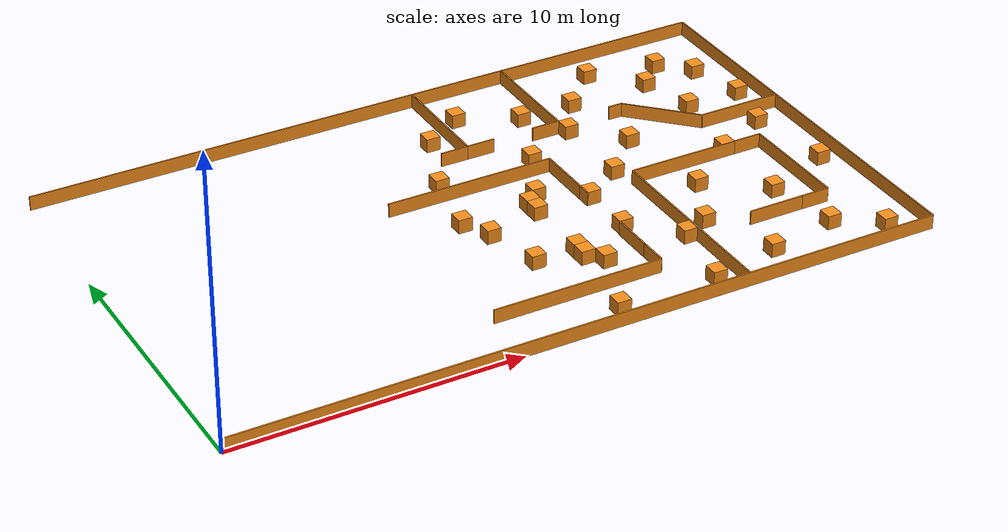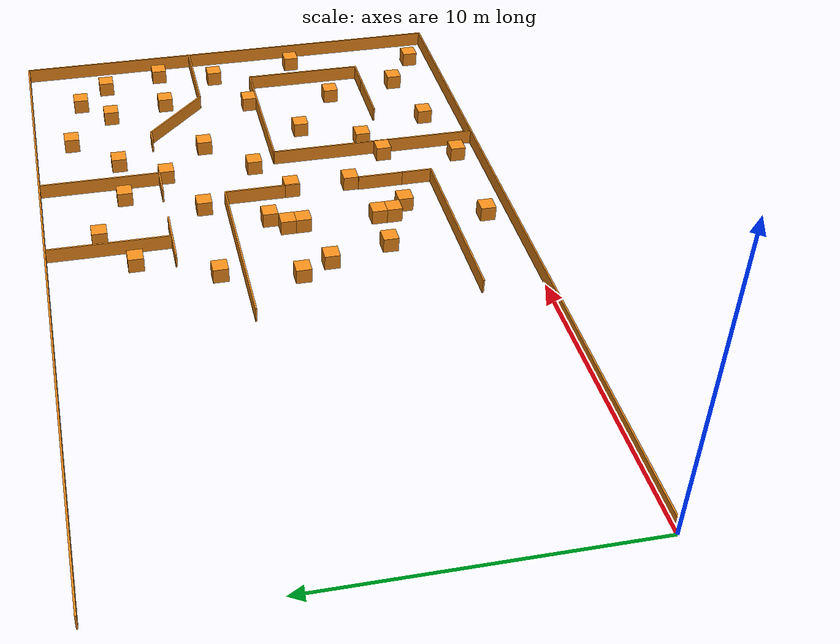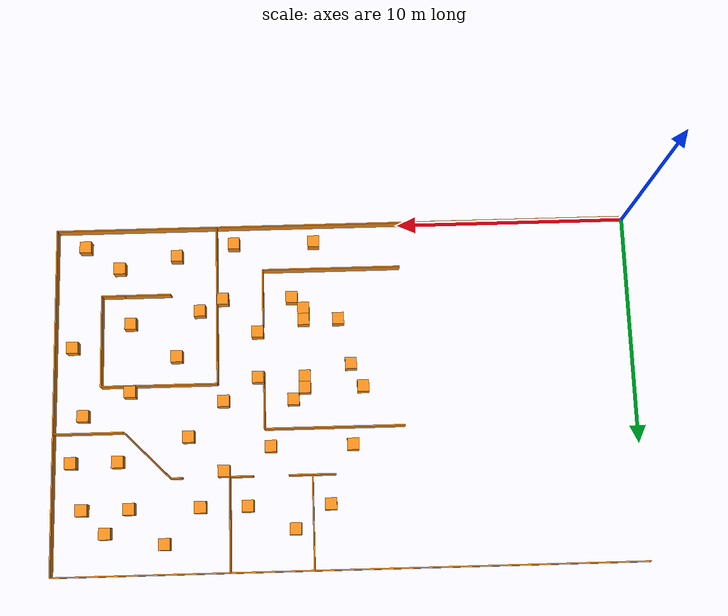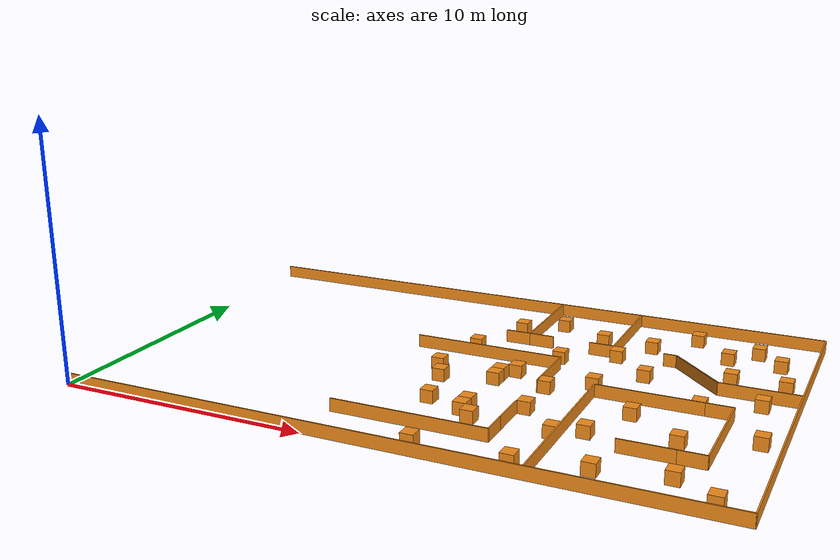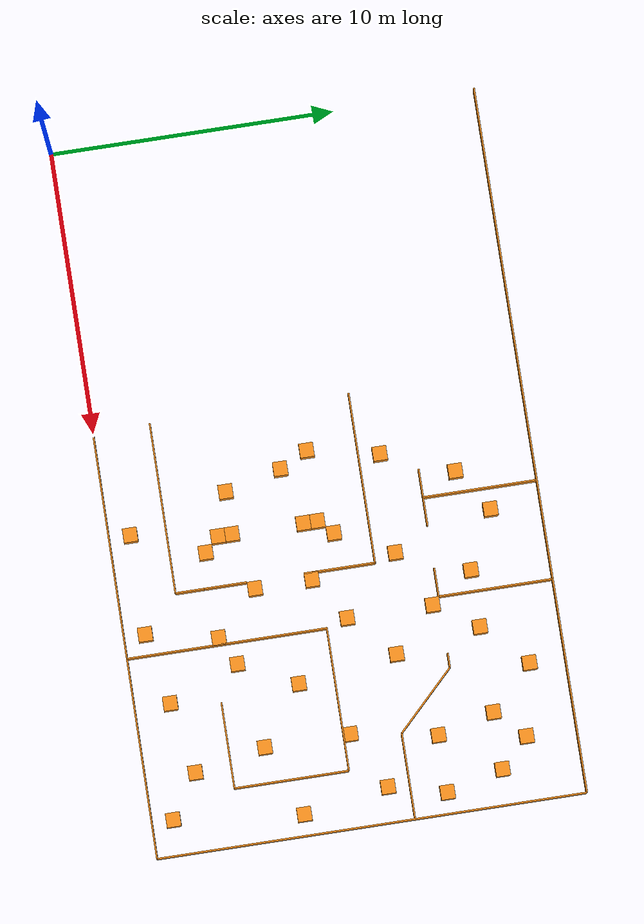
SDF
<sdf version="1.7">
 <world name="default">
  <model name="box_120">
   <pose>16.25 6.75 0.25 0 -0 0</pose>
   <link name="link">
    <inertial>
     <mass>1</mass>
     <inertia><ixx>0</ixx><ixy>0</ixy><ixz>0</ixz><iyy>0</iyy><iyz>0</iyz><izz>0</izz></inertia>
    </inertial>
    <collision name="collision"><geometry><box><size>0.5 0.5 0.5</size></box></geometry></collision>
    <visual name="visual">
     <geometry><box><size>0.5 0.5 0.5</size></box></geometry>
     <material>
      <script><name>Gazebo/Orange</name><uri>file://media/materials/scripts/gazebo.material</uri></script>
     </material>
    </visual>
   </link>
   <static>1</static>
  </model>
  <model name="box_119">
   <pose>17.75 3.25 0.25 0 -0 0</pose>
   <link name="link">
    <inertial>
     <mass>1</mass>
     <inertia><ixx>0</ixx><ixy>0</ixy><ixz>0</ixz><iyy>0</iyy><iyz>0</iyz><izz>0</izz></inertia>
    </inertial>
    <collision name="collision"><geometry><box><size>0.5 0.5 0.5</size></box></geometry></collision>
    <visual name="visual">
     <geometry><box><size>0.5 0.5 0.5</size></box></geometry>
     <material>
      <script><name>Gazebo/Orange</name><uri>file://media/materials/scripts/gazebo.material</uri></script>
     </material>
    </visual>
   </link>
   <static>1</static>
  </model>
  <model name="box_113">
   <pose>12.75 4.25 0.25 0 -0 0</pose>
   <link name="link">
    <inertial>
     <mass>1</mass>
     <inertia><ixx>0</ixx><ixy>0</ixy><ixz>0</ixz><iyy>0</iyy><iyz>0</iyz><izz>0</izz></inertia>
    </inertial>
    <collision name="collision"><geometry><box><size>0.5 0.5 0.5</size></box></geometry></collision>
    <visual name="visual">
     <geometry><box><size>0.5 0.5 0.5</size></box></geometry>
     <material>
      <script><name>Gazebo/Orange</name><uri>file://media/materials/scripts/gazebo.material</uri></script>
     </material>
    </visual>
   </link>
   <static>1</static>
  </model>
  <model name="box_112">
   <pose>14.75 3.25 0.25 0 -0 0</pose>
   <link name="link">
    <inertial>
     <mass>1</mass>
     <inertia><ixx>0</ixx><ixy>0</ixy><ixz>0</ixz><iyy>0</iyy><iyz>0</iyz><izz>0</izz></inertia>
    </inertial>
    <collision name="collision"><geometry><box><size>0.5 0.5 0.5</size></box></geometry></collision>
    <visual name="visual">
     <geometry><box><size>0.5 0.5 0.5</size></box></geometry>
     <material>
      <script><name>Gazebo/Orange</name><uri>file://media/materials/scripts/gazebo.material</uri></script>
     </material>
    </visual>
   </link>
   <static>1</static>
  </model>
  <model name="box_111">
   <pose>14.75 7.75 0.25 0 -0 0</pose>
   <link name="link">
    <inertial>
     <mass>1</mass>
     <inertia><ixx>0</ixx><ixy>0</ixy><ixz>0</ixz><iyy>0</iyy><iyz>0</iyz><izz>0</izz></inertia>
    </inertial>
    <collision name="collision"><geometry><box><size>0.5 0.5 0.5</size></box></geometry></collision>
    <visual name="visual">
     <geometry><box><size>0.5 0.5 0.5</size></box></geometry>
     <material>
      <script><name>Gazebo/Orange</name><uri>file://media/materials/scripts/gazebo.material</uri></script>
     </material>
    </visual>
   </link>
   <static>1</static>
  </model>
  <model name="box_109">
   <pose>12.25 6.25 0.25 0 -0 0</pose>
   <link name="link">
    <inertial>
     <mass>1</mass>
     <inertia><ixx>0</ixx><ixy>0</ixy><ixz>0</ixz><iyy>0</iyy><iyz>0</iyz><izz>0</izz></inertia>
    </inertial>
    <collision name="collision"><geometry><box><size>0.5 0.5 0.5</size></box></geometry></collision>
    <visual name="visual">
     <geometry><box><size>0.5 0.5 0.5</size></box></geometry>
     <material>
      <script><name>Gazebo/Orange</name><uri>file://media/materials/scripts/gazebo.material</uri></script>
     </material>
    </visual>
   </link>
   <static>1</static>
  </model>
  <model name="box_107">
   <pose>23.75 12.25 0.25 0 -0 0</pose>
   <link name="link">
    <inertial>
     <mass>1</mass>
     <inertia><ixx>0</ixx><ixy>0</ixy><ixz>0</ixz><iyy>0</iyy><iyz>0</iyz><izz>0</izz></inertia>
    </inertial>
    <collision name="collision"><geometry><box><size>0.5 0.5 0.5</size></box></geometry></collision>
    <visual name="visual">
     <geometry><box><size>0.5 0.5 0.5</size></box></geometry>
     <material>
      <script><name>Gazebo/Orange</name><uri>file://media/materials/scripts/gazebo.material</uri></script>
     </material>
    </visual>
   </link>
   <static>1</static>
  </model>
  <model name="box_106">
   <pose>23.75 8.25 0.25 0 -0 0</pose>
   <link name="link">
    <inertial>
     <mass>1</mass>
     <inertia><ixx>0</ixx><ixy>0</ixy><ixz>0</ixz><iyy>0</iyy><iyz>0</iyz><izz>0</izz></inertia>
    </inertial>
    <collision name="collision"><geometry><box><size>0.5 0.5 0.5</size></box></geometry></collision>
    <visual name="visual">
     <geometry><box><size>0.5 0.5 0.5</size></box></geometry>
     <material>
      <script><name>Gazebo/Orange</name><uri>file://media/materials/scripts/gazebo.material</uri></script>
     </material>
    </visual>
   </link>
   <static>1</static>
  </model>
  <model name="box_105">
   <pose>23.75 0.75 0.25 0 -0 0</pose>
   <link name="link">
    <inertial>
     <mass>1</mass>
     <inertia><ixx>0</ixx><ixy>0</ixy><ixz>0</ixz><iyy>0</iyy><iyz>0</iyz><izz>0</izz></inertia>
    </inertial>
    <collision name="collision"><geometry><box><size>0.5 0.5 0.5</size></box></geometry></collision>
    <visual name="visual">
     <geometry><box><size>0.5 0.5 0.5</size></box></geometry>
     <material>
      <script><name>Gazebo/Orange</name><uri>file://media/materials/scripts/gazebo.material</uri></script>
     </material>
    </visual>
   </link>
   <static>1</static>
  </model>
  <model name="box_104">
   <pose>24.25 5.25 0.25 0 -0 0</pose>
   <link name="link">
    <inertial>
     <mass>1</mass>
     <inertia><ixx>0</ixx><ixy>0</ixy><ixz>0</ixz><iyy>0</iyy><iyz>0</iyz><izz>0</izz></inertia>
    </inertial>
    <collision name="collision"><geometry><box><size>0.5 0.5 0.5</size></box></geometry></collision>
    <visual name="visual">
     <geometry><box><size>0.5 0.5 0.5</size></box></geometry>
     <material>
      <script><name>Gazebo/Orange</name><uri>file://media/materials/scripts/gazebo.material</uri></script>
     </material>
    </visual>
   </link>
   <static>1</static>
  </model>
  <model name="box_103">
   <pose>18.75 3.75 0.25 0 -0 0</pose>
   <link name="link">
    <inertial>
     <mass>1</mass>
     <inertia><ixx>0</ixx><ixy>0</ixy><ixz>0</ixz><iyy>0</iyy><iyz>0</iyz><izz>0</izz></inertia>
    </inertial>
    <collision name="collision"><geometry><box><size>0.5 0.5 0.5</size></box></geometry></collision>
    <visual name="visual">
     <geometry><box><size>0.5 0.5 0.5</size></box></geometry>
     <material>
      <script><name>Gazebo/Orange</name><uri>file://media/materials/scripts/gazebo.material</uri></script>
     </material>
    </visual>
   </link>
   <static>1</static>
  </model>
  <model name="box_93">
   <pose>13.75 0.75 0.25 0 -0 0</pose>
   <link name="link">
    <inertial>
     <mass>1</mass>
     <inertia><ixx>0</ixx><ixy>0</ixy><ixz>0</ixz><iyy>0</iyy><iyz>0</iyz><izz>0</izz></inertia>
    </inertial>
    <collision name="collision"><geometry><box><size>0.5 0.5 0.5</size></box></geometry></collision>
    <visual name="visual">
     <geometry><box><size>0.5 0.5 0.5</size></box></geometry>
     <material>
      <script><name>Gazebo/Orange</name><uri>file://media/materials/scripts/gazebo.material</uri></script>
     </material>
    </visual>
   </link>
   <static>1</static>
  </model>
  <model name="box_91">
   <pose>17.25 0.75 0.25 0 -0 0</pose>
   <link name="link">
    <inertial>
     <mass>1</mass>
     <inertia><ixx>0</ixx><ixy>0</ixy><ixz>0</ixz><iyy>0</iyy><iyz>0</iyz><izz>0</izz></inertia>
    </inertial>
    <collision name="collision"><geometry><box><size>0.5 0.5 0.5</size></box></geometry></collision>
    <visual name="visual">
     <geometry><box><size>0.5 0.5 0.5</size></box></geometry>
     <material>
      <script><name>Gazebo/Orange</name><uri>file://media/materials/scripts/gazebo.material</uri></script>
     </material>
    </visual>
   </link>
   <static>1</static>
  </model>
  <model name="box_90">
   <pose>16.25 4.75 0.25 0 -0 0</pose>
   <link name="link">
    <inertial>
     <mass>1</mass>
     <inertia><ixx>0</ixx><ixy>0</ixy><ixz>0</ixz><iyy>0</iyy><iyz>0</iyz><izz>0</izz></inertia>
    </inertial>
    <collision name="collision"><geometry><box><size>0.5 0.5 0.5</size></box></geometry></collision>
    <visual name="visual">
     <geometry><box><size>0.5 0.5 0.5</size></box></geometry>
     <material>
      <script><name>Gazebo/Orange</name><uri>file://media/materials/scripts/gazebo.material</uri></script>
     </material>
    </visual>
   </link>
   <static>1</static>
  </model>
  <model name="box_89">
   <pose>21.75 7.25 0.25 0 -0 0</pose>
   <link name="link">
    <inertial>
     <mass>1</mass>
     <inertia><ixx>0</ixx><ixy>0</ixy><ixz>0</ixz><iyy>0</iyy><iyz>0</iyz><izz>0</izz></inertia>
    </inertial>
    <collision name="collision"><geometry><box><size>0.5 0.5 0.5</size></box></geometry></collision>
    <visual name="visual">
     <geometry><box><size>0.5 0.5 0.5</size></box></geometry>
     <material>
      <script><name>Gazebo/Orange</name><uri>file://media/materials/scripts/gazebo.material</uri></script>
     </material>
    </visual>
   </link>
   <static>1</static>
  </model>
  <model name="box_88">
   <pose>17.75 10.75 0.25 0 -0 0</pose>
   <link name="link">
    <inertial>
     <mass>1</mass>
     <inertia><ixx>0</ixx><ixy>0</ixy><ixz>0</ixz><iyy>0</iyy><iyz>0</iyz><izz>0</izz></inertia>
    </inertial>
    <collision name="collision"><geometry><box><size>0.5 0.5 0.5</size></box></geometry></collision>
    <visual name="visual">
     <geometry><box><size>0.5 0.5 0.5</size></box></geometry>
     <material>
      <script><name>Gazebo/Orange</name><uri>file://media/materials/scripts/gazebo.material</uri></script>
     </material>
    </visual>
   </link>
   <static>1</static>
  </model>
  <model name="box_87">
   <pose>15.75 9.75 0.25 0 -0 0</pose>
   <link name="link">
    <inertial>
     <mass>1</mass>
     <inertia><ixx>0</ixx><ixy>0</ixy><ixz>0</ixz><iyy>0</iyy><iyz>0</iyz><izz>0</izz></inertia>
    </inertial>
    <collision name="collision"><geometry><box><size>0.5 0.5 0.5</size></box></geometry></collision>
    <visual name="visual">
     <geometry><box><size>0.5 0.5 0.5</size></box></geometry>
     <material>
      <script><name>Gazebo/Orange</name><uri>file://media/materials/scripts/gazebo.material</uri></script>
     </material>
    </visual>
   </link>
   <static>1</static>
  </model>
  <model name="box_86">
   <pose>12.25 9.75 0.25 0 -0 0</pose>
   <link name="link">
    <inertial>
     <mass>1</mass>
     <inertia><ixx>0</ixx><ixy>0</ixy><ixz>0</ixz><iyy>0</iyy><iyz>0</iyz><izz>0</izz></inertia>
    </inertial>
    <collision name="collision"><geometry><box><size>0.5 0.5 0.5</size></box></geometry></collision>
    <visual name="visual">
     <geometry><box><size>0.5 0.5 0.5</size></box></geometry>
     <material>
      <script><name>Gazebo/Orange</name><uri>file://media/materials/scripts/gazebo.material</uri></script>
     </material>
    </visual>
   </link>
   <static>1</static>
  </model>
  <model name="box_82">
   <pose>22.25 1.75 0.25 0 -0 0</pose>
   <link name="link">
    <inertial>
     <mass>1</mass>
     <inertia><ixx>0</ixx><ixy>0</ixy><ixz>0</ixz><iyy>0</iyy><iyz>0</iyz><izz>0</izz></inertia>
    </inertial>
    <collision name="collision"><geometry><box><size>0.5 0.5 0.5</size></box></geometry></collision>
    <visual name="visual">
     <geometry><box><size>0.5 0.5 0.5</size></box></geometry>
     <material>
      <script><name>Gazebo/Orange</name><uri>file://media/materials/scripts/gazebo.material</uri></script>
     </material>
    </visual>
   </link>
   <static>1</static>
  </model>
  <model name="box_81">
   <pose>19.75 1.25 0.25 0 -0 0</pose>
   <link name="link">
    <inertial>
     <mass>1</mass>
     <inertia><ixx>0</ixx><ixy>0</ixy><ixz>0</ixz><iyy>0</iyy><iyz>0</iyz><izz>0</izz></inertia>
    </inertial>
    <collision name="collision"><geometry><box><size>0.5 0.5 0.5</size></box></geometry></collision>
    <visual name="visual">
     <geometry><box><size>0.5 0.5 0.5</size></box></geometry>
     <material>
      <script><name>Gazebo/Orange</name><uri>file://media/materials/scripts/gazebo.material</uri></script>
     </material>
    </visual>
   </link>
   <static>1</static>
  </model>
  <model name="box_80">
   <pose>21.75 4.25 0.25 0 -0 0</pose>
   <link name="link">
    <inertial>
     <mass>1</mass>
     <inertia><ixx>0</ixx><ixy>0</ixy><ixz>0</ixz><iyy>0</iyy><iyz>0</iyz><izz>0</izz></inertia>
    </inertial>
    <collision name="collision"><geometry><box><size>0.5 0.5 0.5</size></box></geometry></collision>
    <visual name="visual">
     <geometry><box><size>0.5 0.5 0.5</size></box></geometry>
     <material>
      <script><name>Gazebo/Orange</name><uri>file://media/materials/scripts/gazebo.material</uri></script>
     </material>
    </visual>
   </link>
   <static>1</static>
  </model>
  <model name="box_79">
   <pose>19.75 5.75 0.25 0 -0 0</pose>
   <link name="link">
    <inertial>
     <mass>1</mass>
     <inertia><ixx>0</ixx><ixy>0</ixy><ixz>0</ixz><iyy>0</iyy><iyz>0</iyz><izz>0</izz></inertia>
    </inertial>
    <collision name="collision"><geometry><box><size>0.5 0.5 0.5</size></box></geometry></collision>
    <visual name="visual">
     <geometry><box><size>0.5 0.5 0.5</size></box></geometry>
     <material>
      <script><name>Gazebo/Orange</name><uri>file://media/materials/scripts/gazebo.material</uri></script>
     </material>
    </visual>
   </link>
   <static>1</static>
  </model>
  <model name="box_78">
   <pose>17.75 7.75 0.25 0 -0 0</pose>
   <link name="link">
    <inertial>
     <mass>1</mass>
     <inertia><ixx>0</ixx><ixy>0</ixy><ixz>0</ixz><iyy>0</iyy><iyz>0</iyz><izz>0</izz></inertia>
    </inertial>
    <collision name="collision"><geometry><box><size>0.5 0.5 0.5</size></box></geometry></collision>
    <visual name="visual">
     <geometry><box><size>0.5 0.5 0.5</size></box></geometry>
     <material>
      <script><name>Gazebo/Orange</name><uri>file://media/materials/scripts/gazebo.material</uri></script>
     </material>
    </visual>
   </link>
   <static>1</static>
  </model>
  <model name="box_77">
   <pose>19.25 9.25 0.25 0 -0 0</pose>
   <link name="link">
    <inertial>
     <mass>1</mass>
     <inertia><ixx>0</ixx><ixy>0</ixy><ixz>0</ixz><iyy>0</iyy><iyz>0</iyz><izz>0</izz></inertia>
    </inertial>
    <collision name="collision"><geometry><box><size>0.5 0.5 0.5</size></box></geometry></collision>
    <visual name="visual">
     <geometry><box><size>0.5 0.5 0.5</size></box></geometry>
     <material>
      <script><name>Gazebo/Orange</name><uri>file://media/materials/scripts/gazebo.material</uri></script>
     </material>
    </visual>
   </link>
   <static>1</static>
  </model>
  <model name="box_76">
   <pose>21.75 12.25 0.25 0 -0 0</pose>
   <link name="link">
    <inertial>
     <mass>1</mass>
     <inertia><ixx>0</ixx><ixy>0</ixy><ixz>0</ixz><iyy>0</iyy><iyz>0</iyz><izz>0</izz></inertia>
    </inertial>
    <collision name="collision"><geometry><box><size>0.5 0.5 0.5</size></box></geometry></collision>
    <visual name="visual">
     <geometry><box><size>0.5 0.5 0.5</size></box></geometry>
     <material>
      <script><name>Gazebo/Orange</name><uri>file://media/materials/scripts/gazebo.material</uri></script>
     </material>
    </visual>
   </link>
   <static>1</static>
  </model>
  <model name="box_75">
   <pose>22.25 10.25 0.25 0 -0 0</pose>
   <link name="link">
    <inertial>
     <mass>1</mass>
     <inertia><ixx>0</ixx><ixy>0</ixy><ixz>0</ixz><iyy>0</iyy><iyz>0</iyz><izz>0</izz></inertia>
    </inertial>
    <collision name="collision"><geometry><box><size>0.5 0.5 0.5</size></box></geometry></collision>
    <visual name="visual">
     <geometry><box><size>0.5 0.5 0.5</size></box></geometry>
     <material>
      <script><name>Gazebo/Orange</name><uri>file://media/materials/scripts/gazebo.material</uri></script>
     </material>
    </visual>
   </link>
   <static>1</static>
  </model>
  <model name="box_74">
   <pose>24.25 10.25 0.25 0 -0 0</pose>
   <link name="link">
    <inertial>
     <mass>1</mass>
     <inertia><ixx>0</ixx><ixy>0</ixy><ixz>0</ixz><iyy>0</iyy><iyz>0</iyz><izz>0</izz></inertia>
    </inertial>
    <collision name="collision"><geometry><box><size>0.5 0.5 0.5</size></box></geometry></collision>
    <visual name="visual">
     <geometry><box><size>0.5 0.5 0.5</size></box></geometry>
     <material>
      <script><name>Gazebo/Orange</name><uri>file://media/materials/scripts/gazebo.material</uri></script>
     </material>
    </visual>
   </link>
   <static>1</static>
  </model>
  <model name="box_73">
   <pose>18.75 12.25 0.25 0 -0 0</pose>
   <link name="link">
    <inertial>
     <mass>1</mass>
     <inertia><ixx>0</ixx><ixy>0</ixy><ixz>0</ixz><iyy>0</iyy><iyz>0</iyz><izz>0</izz></inertia>
    </inertial>
    <collision name="collision"><geometry><box><size>0.5 0.5 0.5</size></box></geometry></collision>
    <visual name="visual">
     <geometry><box><size>0.5 0.5 0.5</size></box></geometry>
     <material>
      <script><name>Gazebo/Orange</name><uri>file://media/materials/scripts/gazebo.material</uri></script>
     </material>
    </visual>
   </link>
   <static>1</static>
  </model>
  <model name="box_72">
   <pose>20.25 13.75 0.25 0 -0 0</pose>
   <link name="link">
    <inertial>
     <mass>1</mass>
     <inertia><ixx>0</ixx><ixy>0</ixy><ixz>0</ixz><iyy>0</iyy><iyz>0</iyz><izz>0</izz></inertia>
    </inertial>
    <collision name="collision"><geometry><box><size>0.5 0.5 0.5</size></box></geometry></collision>
    <visual name="visual">
     <geometry><box><size>0.5 0.5 0.5</size></box></geometry>
     <material>
      <script><name>Gazebo/Orange</name><uri>file://media/materials/scripts/gazebo.material</uri></script>
     </material>
    </visual>
   </link>
   <static>1</static>
  </model>
  <model name="box_71">
   <pose>22.75 13.25 0.25 0 -0 0</pose>
   <link name="link">
    <inertial>
     <mass>1</mass>
     <inertia><ixx>0</ixx><ixy>0</ixy><ixz>0</ixz><iyy>0</iyy><iyz>0</iyz><izz>0</izz></inertia>
    </inertial>
    <collision name="collision"><geometry><box><size>0.5 0.5 0.5</size></box></geometry></collision>
    <visual name="visual">
     <geometry><box><size>0.5 0.5 0.5</size></box></geometry>
     <material>
      <script><name>Gazebo/Orange</name><uri>file://media/materials/scripts/gazebo.material</uri></script>
     </material>
    </visual>
   </link>
   <static>1</static>
  </model>
  <model name="box_70">
   <pose>16.75 12.25 0.25 0 -0 0</pose>
   <link name="link">
    <inertial>
     <mass>1</mass>
     <inertia><ixx>0</ixx><ixy>0</ixy><ixz>0</ixz><iyy>0</iyy><iyz>0</iyz><izz>0</izz></inertia>
    </inertial>
    <collision name="collision"><geometry><box><size>0.5 0.5 0.5</size></box></geometry></collision>
    <visual name="visual">
     <geometry><box><size>0.5 0.5 0.5</size></box></geometry>
     <material>
      <script><name>Gazebo/Orange</name><uri>file://media/materials/scripts/gazebo.material</uri></script>
     </material>
    </visual>
   </link>
   <static>1</static>
  </model>
  <model name="box_69">
   <pose>14.75 13.25 0.25 0 -0 0</pose>
   <link name="link">
    <inertial>
     <mass>1</mass>
     <inertia><ixx>0</ixx><ixy>0</ixy><ixz>0</ixz><iyy>0</iyy><iyz>0</iyz><izz>0</izz></inertia>
    </inertial>
    <collision name="collision"><geometry><box><size>0.5 0.5 0.5</size></box></geometry></collision>
    <visual name="visual">
     <geometry><box><size>0.5 0.5 0.5</size></box></geometry>
     <material>
      <script><name>Gazebo/Orange</name><uri>file://media/materials/scripts/gazebo.material</uri></script>
     </material>
    </visual>
   </link>
   <static>1</static>
  </model>
  <model name="box_67">
   <pose>13.25 12.25 0.25 0 -0 0</pose>
   <link name="link">
    <inertial>
     <mass>1</mass>
     <inertia><ixx>0</ixx><ixy>0</ixy><ixz>0</ixz><iyy>0</iyy><iyz>0</iyz><izz>0</izz></inertia>
    </inertial>
    <collision name="collision"><geometry><box><size>0.5 0.5 0.5</size></box></geometry></collision>
    <visual name="visual">
     <geometry><box><size>0.5 0.5 0.5</size></box></geometry>
     <material>
      <script><name>Gazebo/Orange</name><uri>file://media/materials/scripts/gazebo.material</uri></script>
     </material>
    </visual>
   </link>
   <static>1</static>
  </model>
  <model name="box_52">
   <pose>14.25 4.25 0.25 0 -0 0</pose>
   <link name="link">
    <inertial>
     <mass>1</mass>
     <inertia><ixx>0</ixx><ixy>0</ixy><ixz>0</ixz><iyy>0</iyy><iyz>0</iyz><izz>0</izz></inertia>
    </inertial>
    <collision name="collision"><geometry><box><size>0.5 0.5 0.5</size></box></geometry></collision>
    <visual name="visual">
     <geometry><box><size>0.5 0.5 0.5</size></box></geometry>
     <material>
      <script><name>Gazebo/Orange</name><uri>file://media/materials/scripts/gazebo.material</uri></script>
     </material>
    </visual>
   </link>
   <static>1</static>
  </model>
  <model name="box_51">
   <pose>14.25 6.75 0.25 0 -0 0</pose>
   <link name="link">
    <inertial>
     <mass>1</mass>
     <inertia><ixx>0</ixx><ixy>0</ixy><ixz>0</ixz><iyy>0</iyy><iyz>0</iyz><izz>0</izz></inertia>
    </inertial>
    <collision name="collision"><geometry><box><size>0.5 0.5 0.5</size></box></geometry></collision>
    <visual name="visual">
     <geometry><box><size>0.5 0.5 0.5</size></box></geometry>
     <material>
      <script><name>Gazebo/Orange</name><uri>file://media/materials/scripts/gazebo.material</uri></script>
     </material>
    </visual>
   </link>
   <static>1</static>
  </model>
  <model name="box_48">
   <pose>14.25 3.75 0.25 0 -0 0</pose>
   <link name="link">
    <inertial>
     <mass>1</mass>
     <inertia><ixx>0</ixx><ixy>0</ixy><ixz>0</ixz><iyy>0</iyy><iyz>0</iyz><izz>0</izz></inertia>
    </inertial>
    <collision name="collision"><geometry><box><size>0.5 0.5 0.5</size></box></geometry></collision>
    <visual name="visual">
     <geometry><box><size>0.5 0.5 0.5</size></box></geometry>
     <material>
      <script><name>Gazebo/Orange</name><uri>file://media/materials/scripts/gazebo.material</uri></script>
     </material>
    </visual>
   </link>
   <static>1</static>
  </model>
  <model name="box_46">
   <pose>14.25 7.25 0.25 0 -0 0</pose>
   <link name="link">
    <inertial>
     <mass>1</mass>
     <inertia><ixx>0</ixx><ixy>0</ixy><ixz>0</ixz><iyy>0</iyy><iyz>0</iyz><izz>0</izz></inertia>
    </inertial>
    <collision name="collision"><geometry><box><size>0.5 0.5 0.5</size></box></geometry></collision>
    <visual name="visual">
     <geometry><box><size>0.5 0.5 0.5</size></box></geometry>
     <material>
      <script><name>Gazebo/Orange</name><uri>file://media/materials/scripts/gazebo.material</uri></script>
     </material>
    </visual>
   </link>
   <static>1</static>
  </model>
  <model name="box_45">
   <pose>11.75 7.25 0.25 0 -0 0</pose>
   <link name="link">
    <inertial>
     <mass>1</mass>
     <inertia><ixx>0</ixx><ixy>0</ixy><ixz>0</ixz><iyy>0</iyy><iyz>0</iyz><izz>0</izz></inertia>
    </inertial>
    <collision name="collision"><geometry><box><size>0.5 0.5 0.5</size></box></geometry></collision>
    <visual name="visual">
     <geometry><box><size>0.5 0.5 0.5</size></box></geometry>
     <material>
      <script><name>Gazebo/Orange</name><uri>file://media/materials/scripts/gazebo.material</uri></script>
     </material>
    </visual>
   </link>
   <static>1</static>
  </model>
  <model name="box_44">
   <pose>16 3.75 0.25 0 -0 1.5708</pose>
   <link name="link">
    <inertial>
     <mass>1</mass>
     <inertia><ixx>0</ixx><ixy>0</ixy><ixz>0</ixz><iyy>0</iyy><iyz>0</iyz><izz>0</izz></inertia>
    </inertial>
    <collision name="collision"><geometry><box><size>1.5 0.05 0.5</size></box></geometry></collision>
    <visual name="visual">
     <geometry><box><size>1.5 0.05 0.5</size></box></geometry>
     <material>
      <script><name>Gazebo/Orange</name><uri>file://media/materials/scripts/gazebo.material</uri></script>
     </material>
    </visual>
   </link>
   <static>1</static>
  </model>
  <model name="box_43">
   <pose>16 6.75 0.25 0 0 -1.5708</pose>
   <link name="link">
    <inertial>
     <mass>1</mass>
     <inertia><ixx>0</ixx><ixy>0</ixy><ixz>0</ixz><iyy>0</iyy><iyz>0</iyz><izz>0</izz></inertia>
    </inertial>
    <collision name="collision"><geometry><box><size>0.5 0.05 0.5</size></box></geometry></collision>
    <visual name="visual">
     <geometry><box><size>0.5 0.05 0.5</size></box></geometry>
     <material>
      <script><name>Gazebo/Orange</name><uri>file://media/materials/scripts/gazebo.material</uri></script>
     </material>
    </visual>
   </link>
   <static>1</static>
  </model>
  <model name="box_40">
   <pose>22.5 3 0.25 0 -0 0</pose>
   <link name="link">
    <inertial>
     <mass>1</mass>
     <inertia><ixx>0</ixx><ixy>0</ixy><ixz>0</ixz><iyy>0</iyy><iyz>0</iyz><izz>0</izz></inertia>
    </inertial>
    <collision name="collision"><geometry><box><size>1 0.05 0.5</size></box></geometry></collision>
    <visual name="visual">
     <geometry><box><size>1 0.05 0.5</size></box></geometry>
     <material>
      <script><name>Gazebo/Orange</name><uri>file://media/materials/scripts/gazebo.material</uri></script>
     </material>
    </visual>
   </link>
   <static>1</static>
  </model>
  <model name="box_39">
   <pose>23 5 0.25 0 -0 1.5708</pose>
   <link name="link">
    <inertial>
     <mass>1</mass>
     <inertia><ixx>0</ixx><ixy>0</ixy><ixz>0</ixz><iyy>0</iyy><iyz>0</iyz><izz>0</izz></inertia>
    </inertial>
    <collision name="collision"><geometry><box><size>4 0.05 0.5</size></box></geometry></collision>
    <visual name="visual">
     <geometry><box><size>4 0.05 0.5</size></box></geometry>
     <material>
      <script><name>Gazebo/Orange</name><uri>file://media/materials/scripts/gazebo.material</uri></script>
     </material>
    </visual>
   </link>
   <static>1</static>
  </model>
  <model name="box_38">
   <pose>22.5 7 0.25 0 0 -3.14159</pose>
   <link name="link">
    <inertial>
     <mass>1</mass>
     <inertia><ixx>0</ixx><ixy>0</ixy><ixz>0</ixz><iyy>0</iyy><iyz>0</iyz><izz>0</izz></inertia>
    </inertial>
    <collision name="collision"><geometry><box><size>1 0.05 0.5</size></box></geometry></collision>
    <visual name="visual">
     <geometry><box><size>1 0.05 0.5</size></box></geometry>
     <material>
      <script><name>Gazebo/Orange</name><uri>file://media/materials/scripts/gazebo.material</uri></script>
     </material>
    </visual>
   </link>
   <static>1</static>
  </model>
  <model name="box_36">
   <pose>13 2 0.25 0 -0 0</pose>
   <link name="link">
    <inertial>
     <mass>1</mass>
     <inertia><ixx>0</ixx><ixy>0</ixy><ixz>0</ixz><iyy>0</iyy><iyz>0</iyz><izz>0</izz></inertia>
    </inertial>
    <collision name="collision"><geometry><box><size>6 0.05 0.5</size></box></geometry></collision>
    <visual name="visual">
     <geometry><box><size>6 0.05 0.5</size></box></geometry>
     <material>
      <script><name>Gazebo/Orange</name><uri>file://media/materials/scripts/gazebo.material</uri></script>
     </material>
    </visual>
   </link>
   <static>1</static>
  </model>
  <model name="box_35">
   <pose>16 2.5 0.25 0 -0 1.5708</pose>
   <link name="link">
    <inertial>
     <mass>1</mass>
     <inertia><ixx>0</ixx><ixy>0</ixy><ixz>0</ixz><iyy>0</iyy><iyz>0</iyz><izz>0</izz></inertia>
    </inertial>
    <collision name="collision"><geometry><box><size>1 0.05 0.5</size></box></geometry></collision>
    <visual name="visual">
     <geometry><box><size>1 0.05 0.5</size></box></geometry>
     <material>
      <script><name>Gazebo/Orange</name><uri>file://media/materials/scripts/gazebo.material</uri></script>
     </material>
    </visual>
   </link>
   <static>1</static>
  </model>
  <model name="box_31">
   <pose>19.75 11 0.25 0 -0 0</pose>
   <link name="link">
    <inertial>
     <mass>1</mass>
     <inertia><ixx>0</ixx><ixy>0</ixy><ixz>0</ixz><iyy>0</iyy><iyz>0</iyz><izz>0</izz></inertia>
    </inertial>
    <collision name="collision"><geometry><box><size>0.5 0.05 0.5</size></box></geometry></collision>
    <visual name="visual">
     <geometry><box><size>0.5 0.05 0.5</size></box></geometry>
     <material>
      <script><name>Gazebo/Orange</name><uri>file://media/materials/scripts/gazebo.material</uri></script>
     </material>
    </visual>
   </link>
   <static>1</static>
  </model>
  <model name="box_30">
   <pose>23.5 9 0.25 0 0 -3.14159</pose>
   <link name="link">
    <inertial>
     <mass>1</mass>
     <inertia><ixx>0</ixx><ixy>0</ixy><ixz>0</ixz><iyy>0</iyy><iyz>0</iyz><izz>0</izz></inertia>
    </inertial>
    <collision name="collision"><geometry><box><size>3 0.05 0.5</size></box></geometry></collision>
    <visual name="visual">
     <geometry><box><size>3 0.05 0.5</size></box></geometry>
     <material>
      <script><name>Gazebo/Orange</name><uri>file://media/materials/scripts/gazebo.material</uri></script>
     </material>
    </visual>
   </link>
   <static>1</static>
  </model>
  <model name="box_29">
   <pose>21 10 0.25 0 -0 2.35619</pose>
   <link name="link">
    <inertial>
     <mass>1</mass>
     <inertia><ixx>0</ixx><ixy>0</ixy><ixz>0</ixz><iyy>0</iyy><iyz>0</iyz><izz>0</izz></inertia>
    </inertial>
    <collision name="collision"><geometry><box><size>2.82843 0.05 0.5</size></box></geometry></collision>
    <visual name="visual">
     <geometry><box><size>2.82843 0.05 0.5</size></box></geometry>
     <material>
      <script><name>Gazebo/Orange</name><uri>file://media/materials/scripts/gazebo.material</uri></script>
     </material>
    </visual>
   </link>
   <static>1</static>
  </model>
  <model name="box_28">
   <pose>21 3 0.25 0 -0 0</pose>
   <link name="link">
    <inertial>
     <mass>1</mass>
     <inertia><ixx>0</ixx><ixy>0</ixy><ixz>0</ixz><iyy>0</iyy><iyz>0</iyz><izz>0</izz></inertia>
    </inertial>
    <collision name="collision"><geometry><box><size>2 0.05 0.5</size></box></geometry></collision>
    <visual name="visual">
     <geometry><box><size>2 0.05 0.5</size></box></geometry>
     <material>
      <script><name>Gazebo/Orange</name><uri>file://media/materials/scripts/gazebo.material</uri></script>
     </material>
    </visual>
   </link>
   <static>1</static>
  </model>
  <model name="box_27">
   <pose>20 7 0.25 0 0 -3.14159</pose>
   <link name="link">
    <inertial>
     <mass>1</mass>
     <inertia><ixx>0</ixx><ixy>0</ixy><ixz>0</ixz><iyy>0</iyy><iyz>0</iyz><izz>0</izz></inertia>
    </inertial>
    <collision name="collision"><geometry><box><size>4 0.05 0.5</size></box></geometry></collision>
    <visual name="visual">
     <geometry><box><size>4 0.05 0.5</size></box></geometry>
     <material>
      <script><name>Gazebo/Orange</name><uri>file://media/materials/scripts/gazebo.material</uri></script>
     </material>
    </visual>
   </link>
   <static>1</static>
  </model>
  <model name="box_26">
   <pose>18 3.5 0.25 0 -0 1.5708</pose>
   <link name="link">
    <inertial>
     <mass>1</mass>
     <inertia><ixx>0</ixx><ixy>0</ixy><ixz>0</ixz><iyy>0</iyy><iyz>0</iyz><izz>0</izz></inertia>
    </inertial>
    <collision name="collision"><geometry><box><size>7 0.05 0.5</size></box></geometry></collision>
    <visual name="visual">
     <geometry><box><size>7 0.05 0.5</size></box></geometry>
     <material>
      <script><name>Gazebo/Orange</name><uri>file://media/materials/scripts/gazebo.material</uri></script>
     </material>
    </visual>
   </link>
   <static>1</static>
  </model>
  <model name="box_25">
   <pose>17.5 13 0.25 0 0 -1.5708</pose>
   <link name="link">
    <inertial>
     <mass>1</mass>
     <inertia><ixx>0</ixx><ixy>0</ixy><ixz>0</ixz><iyy>0</iyy><iyz>0</iyz><izz>0</izz></inertia>
    </inertial>
    <collision name="collision"><geometry><box><size>4 0.05 0.5</size></box></geometry></collision>
    <visual name="visual">
     <geometry><box><size>4 0.05 0.5</size></box></geometry>
     <material>
      <script><name>Gazebo/Orange</name><uri>file://media/materials/scripts/gazebo.material</uri></script>
     </material>
    </visual>
   </link>
   <static>1</static>
  </model>
  <model name="box_24">
   <pose>17 11 0.25 0 0 -3.14159</pose>
   <link name="link">
    <inertial>
     <mass>1</mass>
     <inertia><ixx>0</ixx><ixy>0</ixy><ixz>0</ixz><iyy>0</iyy><iyz>0</iyz><izz>0</izz></inertia>
    </inertial>
    <collision name="collision"><geometry><box><size>1 0.05 0.5</size></box></geometry></collision>
    <visual name="visual">
     <geometry><box><size>1 0.05 0.5</size></box></geometry>
     <material>
      <script><name>Gazebo/Orange</name><uri>file://media/materials/scripts/gazebo.material</uri></script>
     </material>
    </visual>
   </link>
   <static>1</static>
  </model>
  <model name="box_23">
   <pose>14.5 11 0.25 0 -0 0</pose>
   <link name="link">
    <inertial>
     <mass>1</mass>
     <inertia><ixx>0</ixx><ixy>0</ixy><ixz>0</ixz><iyy>0</iyy><iyz>0</iyz><izz>0</izz></inertia>
    </inertial>
    <collision name="collision"><geometry><box><size>1 0.05 0.5</size></box></geometry></collision>
    <visual name="visual">
     <geometry><box><size>1 0.05 0.5</size></box></geometry>
     <material>
      <script><name>Gazebo/Orange</name><uri>file://media/materials/scripts/gazebo.material</uri></script>
     </material>
    </visual>
   </link>
   <static>1</static>
  </model>
  <model name="box_22">
   <pose>13 9 0.25 0 -0 0</pose>
   <link name="link">
    <inertial>
     <mass>1</mass>
     <inertia><ixx>0</ixx><ixy>0</ixy><ixz>0</ixz><iyy>0</iyy><iyz>0</iyz><izz>0</izz></inertia>
    </inertial>
    <collision name="collision"><geometry><box><size>6 0.05 0.5</size></box></geometry></collision>
    <visual name="visual">
     <geometry><box><size>6 0.05 0.5</size></box></geometry>
     <material>
      <script><name>Gazebo/Orange</name><uri>file://media/materials/scripts/gazebo.material</uri></script>
     </material>
    </visual>
   </link>
   <static>1</static>
  </model>
  <model name="box_21">
   <pose>16 8 0.25 0 0 -1.5708</pose>
   <link name="link">
    <inertial>
     <mass>1</mass>
     <inertia><ixx>0</ixx><ixy>0</ixy><ixz>0</ixz><iyy>0</iyy><iyz>0</iyz><izz>0</izz></inertia>
    </inertial>
    <collision name="collision"><geometry><box><size>2 0.05 0.5</size></box></geometry></collision>
    <visual name="visual">
     <geometry><box><size>2 0.05 0.5</size></box></geometry>
     <material>
      <script><name>Gazebo/Orange</name><uri>file://media/materials/scripts/gazebo.material</uri></script>
     </material>
    </visual>
   </link>
   <static>1</static>
  </model>
  <model name="box_16">
   <pose>14 13 0.25 0 0 -1.5708</pose>
   <link name="link">
    <inertial>
     <mass>1</mass>
     <inertia><ixx>0</ixx><ixy>0</ixy><ixz>0</ixz><iyy>0</iyy><iyz>0</iyz><izz>0</izz></inertia>
    </inertial>
    <collision name="collision"><geometry><box><size>4 0.05 0.5</size></box></geometry></collision>
    <visual name="visual">
     <geometry><box><size>4 0.05 0.5</size></box></geometry>
     <material>
      <script><name>Gazebo/Orange</name><uri>file://media/materials/scripts/gazebo.material</uri></script>
     </material>
    </visual>
   </link>
   <static>1</static>
  </model>
  <model name="box_15">
   <pose>13.5 11 0.25 0 0 -3.14159</pose>
   <link name="link">
    <inertial>
     <mass>1</mass>
     <inertia><ixx>0</ixx><ixy>0</ixy><ixz>0</ixz><iyy>0</iyy><iyz>0</iyz><izz>0</izz></inertia>
    </inertial>
    <collision name="collision"><geometry><box><size>1 0.05 0.5</size></box></geometry></collision>
    <visual name="visual">
     <geometry><box><size>1 0.05 0.5</size></box></geometry>
     <material>
      <script><name>Gazebo/Orange</name><uri>file://media/materials/scripts/gazebo.material</uri></script>
     </material>
    </visual>
   </link>
   <static>1</static>
  </model>
  <model name="box_4">
   <pose>12.5 15 0.25 0 0 -3.14159</pose>
   <link name="link">
    <inertial>
     <mass>1</mass>
     <inertia><ixx>0</ixx><ixy>0</ixy><ixz>0</ixz><iyy>0</iyy><iyz>0</iyz><izz>0</izz></inertia>
    </inertial>
    <collision name="collision"><geometry><box><size>25 0.05 0.5</size></box></geometry></collision>
    <visual name="visual">
     <geometry><box><size>25 0.05 0.5</size></box></geometry>
     <material>
      <script><name>Gazebo/Orange</name><uri>file://media/materials/scripts/gazebo.material</uri></script>
     </material>
    </visual>
   </link>
   <static>1</static>
  </model>
  <model name="box_2">
   <pose>12.5 0 0.25 0 -0 0</pose>
   <link name="link">
    <inertial>
     <mass>1</mass>
     <inertia><ixx>0</ixx><ixy>0</ixy><ixz>0</ixz><iyy>0</iyy><iyz>0</iyz><izz>0</izz></inertia>
    </inertial>
    <collision name="collision"><geometry><box><size>25 0.05 0.5</size></box></geometry></collision>
    <visual name="visual">
     <geometry><box><size>25 0.05 0.5</size></box></geometry>
     <material>
      <script><name>Gazebo/Orange</name><uri>file://media/materials/scripts/gazebo.material</uri></script>
     </material>
    </visual>
   </link>
   <static>1</static>
  </model>
  <model name="box_1">
   <pose>25 7.5 0.25 0 -0 1.5708</pose>
   <link name="link">
    <inertial>
     <mass>1</mass>
     <inertia><ixx>0</ixx><ixy>0</ixy><ixz>0</ixz><iyy>0</iyy><iyz>0</iyz><izz>0</izz></inertia>
    </inertial>
    <collision name="collision"><geometry><box><size>15 0.05 0.5</size></box></geometry></collision>
    <visual name="visual">
     <geometry><box><size>15 0.05 0.5</size></box></geometry>
     <material>
      <script><name>Gazebo/Orange</name><uri>file://media/materials/scripts/gazebo.material</uri></script>
     </material>
    </visual>
   </link>
   <static>1</static>
  </model>
 </world>
</sdf>
